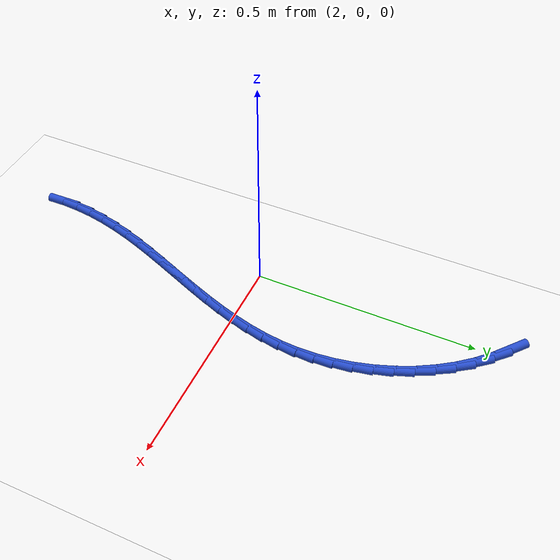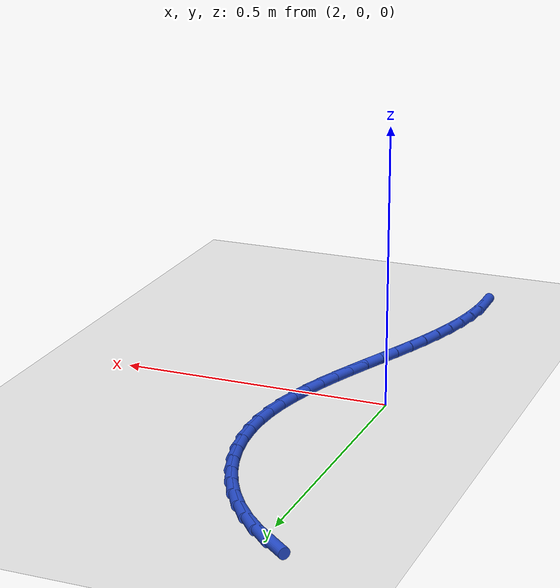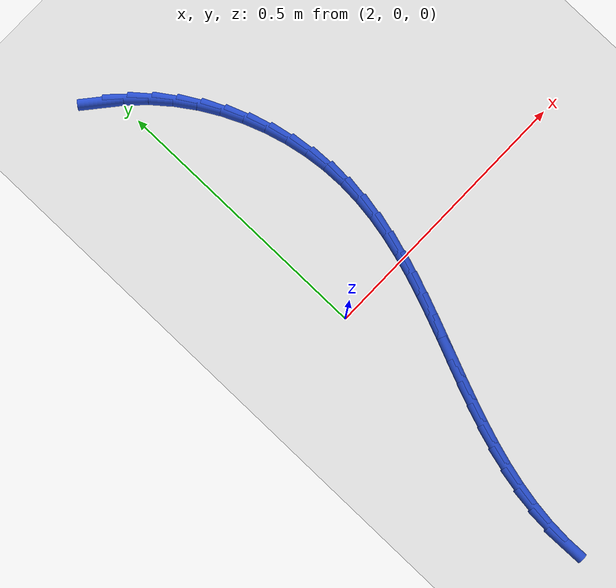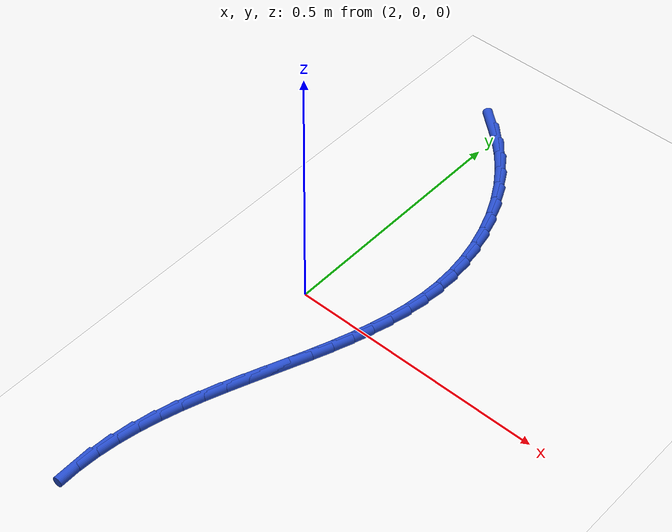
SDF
<sdf version="1.6">
 <world name="default">
  <model name="ground_plane">
   <static>1</static>
   <link name="link">
    <collision name="collision">
     <geometry><plane><normal>0 0 1</normal><size>100 100</size></plane></geometry>
     <surface><friction><ode><mu>100</mu><mu2>50</mu2></ode></friction></surface>
    </collision>
    <visual name="visual">
     <cast_shadows>0</cast_shadows>
     <geometry><plane><normal>0 0 1</normal><size>100 100</size></plane></geometry>
     <material>
      <script><uri>file://media/materials/scripts/gazebo.material</uri><name>Gazebo/WhiteGlow</name></script>
     </material>
    </visual>
   </link>
  </model>
  <model name="line">
   <link name="link_75">
    <pose>1.9780614013407571 0.5671713108625649 0.01 0 1.57 -0.6936888601320007</pose>
    <collision name="collision">
     <geometry><cylinder><radius>0.01</radius><length>0.08</length></cylinder></geometry>
    </collision>
    <visual name="visual">
     <material>
      <script><name>Gazebo/Blue</name><uri>file://media/materials/scripts/gazebo.material</uri></script>
     </material>
     <geometry><cylinder><radius>0.01</radius><length>0.08</length></cylinder></geometry>
    </visual>
   </link>
   <link name="link_76">
    <pose>2.011343939112425 0.5394949932812612 0.01 0 1.57 -0.7892312715022529</pose>
    <collision name="collision">
     <geometry><cylinder><radius>0.01</radius><length>0.08</length></cylinder></geometry>
    </collision>
    <visual name="visual">
     <material>
      <script><name>Gazebo/Blue</name><uri>file://media/materials/scripts/gazebo.material</uri></script>
     </material>
     <geometry><cylinder><radius>0.01</radius><length>0.08</length></cylinder></geometry>
    </visual>
   </link>
   <link name="link_77">
    <pose>2.041561241494025 0.5090451460177544 0.01 0 1.57 -0.8811543210112385</pose>
    <collision name="collision">
     <geometry><cylinder><radius>0.01</radius><length>0.08</length></cylinder></geometry>
    </collision>
    <visual name="visual">
     <material>
      <script><name>Gazebo/Blue</name><uri>file://media/materials/scripts/gazebo.material</uri></script>
     </material>
     <geometry><cylinder><radius>0.01</radius><length>0.08</length></cylinder></geometry>
    </visual>
   </link>
   <link name="link_78">
    <pose>2.068681072211994 0.476162038779966 0.01 0 1.57 -0.9695959242122205</pose>
    <collision name="collision">
     <geometry><cylinder><radius>0.01</radius><length>0.08</length></cylinder></geometry>
    </collision>
    <visual name="visual">
     <material>
      <script><name>Gazebo/Blue</name><uri>file://media/materials/scripts/gazebo.material</uri></script>
     </material>
     <geometry><cylinder><radius>0.01</radius><length>0.08</length></cylinder></geometry>
    </visual>
   </link>
   <link name="link_79">
    <pose>2.0926711949927723 0.441185941275816 0.01 0 1.57 -1.0549344981326458</pose>
    <collision name="collision">
     <geometry><cylinder><radius>0.01</radius><length>0.08</length></cylinder></geometry>
    </collision>
    <visual name="visual">
     <material>
      <script><name>Gazebo/Blue</name><uri>file://media/materials/scripts/gazebo.material</uri></script>
     </material>
     <geometry><cylinder><radius>0.01</radius><length>0.08</length></cylinder></geometry>
    </visual>
   </link>
   <link name="link_80">
    <pose>2.113499373562797 0.40445712321322436 0.01 0 1.57 -1.137733074092599</pose>
    <collision name="collision">
     <geometry><cylinder><radius>0.01</radius><length>0.08</length></cylinder></geometry>
    </collision>
    <visual name="visual">
     <material>
      <script><name>Gazebo/Blue</name><uri>file://media/materials/scripts/gazebo.material</uri></script>
     </material>
     <geometry><cylinder><radius>0.01</radius><length>0.08</length></cylinder></geometry>
    </visual>
   </link>
   <link name="link_81">
    <pose>2.1311333716485055 0.36631585430011204 0.01 0 1.57 -1.218692683642936</pose>
    <collision name="collision">
     <geometry><cylinder><radius>0.01</radius><length>0.08</length></cylinder></geometry>
    </collision>
    <visual name="visual">
     <material>
      <script><name>Gazebo/Blue</name><uri>file://media/materials/scripts/gazebo.material</uri></script>
     </material>
     <geometry><cylinder><radius>0.01</radius><length>0.08</length></cylinder></geometry>
    </visual>
   </link>
   <link name="link_82">
    <pose>2.1455409529763365 0.32710240424439935 0.01 0 1.57 -1.2986182564822601</pose>
    <collision name="collision">
     <geometry><cylinder><radius>0.01</radius><length>0.08</length></cylinder></geometry>
    </collision>
    <visual name="visual">
     <material>
      <script><name>Gazebo/Blue</name><uri>file://media/materials/scripts/gazebo.material</uri></script>
     </material>
     <geometry><cylinder><radius>0.01</radius><length>0.08</length></cylinder></geometry>
    </visual>
   </link>
   <link name="link_83">
    <pose>2.1566898812727264 0.28715704275400605 0.01 0 1.57 -1.3783963968486297</pose>
    <collision name="collision">
     <geometry><cylinder><radius>0.01</radius><length>0.08</length></cylinder></geometry>
    </collision>
    <visual name="visual">
     <material>
      <script><name>Gazebo/Blue</name><uri>file://media/materials/scripts/gazebo.material</uri></script>
     </material>
     <geometry><cylinder><radius>0.01</radius><length>0.08</length></cylinder></geometry>
    </visual>
   </link>
   <link name="link_84">
    <pose>2.1645479202641145 0.2468200395368534 0.01 0 1.57 -1.4589820125764221</pose>
    <collision name="collision">
     <geometry><cylinder><radius>0.01</radius><length>0.08</length></cylinder></geometry>
    </collision>
    <visual name="visual">
     <material>
      <script><name>Gazebo/Blue</name><uri>file://media/materials/scripts/gazebo.material</uri></script>
     </material>
     <geometry><cylinder><radius>0.01</radius><length>0.08</length></cylinder></geometry>
    </visual>
   </link>
   <link name="link_85">
    <pose>2.1690828336769385 0.20643166430086088 0.01 0 1.57 -1.5413742203764105</pose>
    <collision name="collision">
     <geometry><cylinder><radius>0.01</radius><length>0.08</length></cylinder></geometry>
    </collision>
    <visual name="visual">
     <material>
      <script><name>Gazebo/Blue</name><uri>file://media/materials/scripts/gazebo.material</uri></script>
     </material>
     <geometry><cylinder><radius>0.01</radius><length>0.08</length></cylinder></geometry>
    </visual>
   </link>
   <link name="link_86">
    <pose>2.1702630043756845 0.16633153958562433 0.01 0 1.57 1.5180313942333072</pose>
    <collision name="collision">
     <geometry><cylinder><radius>0.01</radius><length>0.08</length></cylinder></geometry>
    </collision>
    <visual name="visual">
     <material>
      <script><name>Gazebo/Blue</name><uri>file://media/materials/scripts/gazebo.material</uri></script>
     </material>
     <geometry><cylinder><radius>0.01</radius><length>0.08</length></cylinder></geometry>
    </visual>
   </link>
   <link name="link_87">
    <pose>2.168171961959467 0.1267389281505984 0.01 0 1.57 1.4429576533127935</pose>
    <collision name="collision">
     <geometry><cylinder><radius>0.01</radius><length>0.08</length></cylinder></geometry>
    </collision>
    <visual name="visual">
     <material>
      <script><name>Gazebo/Blue</name><uri>file://media/materials/scripts/gazebo.material</uri></script>
     </material>
     <geometry><cylinder><radius>0.01</radius><length>0.08</length></cylinder></geometry>
    </visual>
   </link>
   <link name="link_88">
    <pose>2.1631426494627157 0.08761238760943799 0.01 0 1.57 1.3770070553616547</pose>
    <collision name="collision">
     <geometry><cylinder><radius>0.01</radius><length>0.08</length></cylinder></geometry>
    </collision>
    <visual name="visual">
     <material>
      <script><name>Gazebo/Blue</name><uri>file://media/materials/scripts/gazebo.material</uri></script>
     </material>
     <geometry><cylinder><radius>0.01</radius><length>0.08</length></cylinder></geometry>
    </visual>
   </link>
   <link name="link_89">
    <pose>2.1555406254746177 0.04887638341494148 0.01 0 1.57 1.3208284747273251</pose>
    <collision name="collision">
     <geometry><cylinder><radius>0.01</radius><length>0.08</length></cylinder></geometry>
    </collision>
    <visual name="visual">
     <material>
      <script><name>Gazebo/Blue</name><uri>file://media/materials/scripts/gazebo.material</uri></script>
     </material>
     <geometry><cylinder><radius>0.01</radius><length>0.08</length></cylinder></geometry>
    </visual>
   </link>
   <link name="link_90">
    <pose>2.1457314485843564 0.010455381019906073 0.01 0 1.57 1.2746292530645242</pose>
    <collision name="collision">
     <geometry><cylinder><radius>0.01</radius><length>0.08</length></cylinder></geometry>
    </collision>
    <visual name="visual">
     <material>
      <script><name>Gazebo/Blue</name><uri>file://media/materials/scripts/gazebo.material</uri></script>
     </material>
     <geometry><cylinder><radius>0.01</radius><length>0.08</length></cylinder></geometry>
    </visual>
   </link>
   <link name="link_91">
    <pose>2.1340806773811165 -0.027726154122870675 0.01 0 1.57 1.2383304844749423</pose>
    <collision name="collision">
     <geometry><cylinder><radius>0.01</radius><length>0.08</length></cylinder></geometry>
    </collision>
    <visual name="visual">
     <material>
      <script><name>Gazebo/Blue</name><uri>file://media/materials/scripts/gazebo.material</uri></script>
     </material>
     <geometry><cylinder><radius>0.01</radius><length>0.08</length></cylinder></geometry>
    </visual>
   </link>
   <link name="link_92">
    <pose>2.120953870454084 -0.06574375656059198 0.01 0 1.57 1.211705965371024</pose>
    <collision name="collision">
     <geometry><cylinder><radius>0.01</radius><length>0.08</length></cylinder></geometry>
    </collision>
    <visual name="visual">
     <material>
      <script><name>Gazebo/Blue</name><uri>file://media/materials/scripts/gazebo.material</uri></script>
     </material>
     <geometry><cylinder><radius>0.01</radius><length>0.08</length></cylinder></geometry>
    </visual>
   </link>
   <link name="link_93">
    <pose>2.106716586392442 -0.10367296084045868 0.01 0 1.57 1.1944879876017243</pose>
    <collision name="collision">
     <geometry><cylinder><radius>0.01</radius><length>0.08</length></cylinder></geometry>
    </collision>
    <visual name="visual">
     <material>
      <script><name>Gazebo/Blue</name><uri>file://media/materials/scripts/gazebo.material</uri></script>
     </material>
     <geometry><cylinder><radius>0.01</radius><length>0.08</length></cylinder></geometry>
    </visual>
   </link>
   <link name="link_94">
    <pose>2.091734383785376 -0.14158930150967414 0.01 0 1.57 1.1864381121315333</pose>
    <collision name="collision">
     <geometry><cylinder><radius>0.01</radius><length>0.08</length></cylinder></geometry>
    </collision>
    <visual name="visual">
     <material>
      <script><name>Gazebo/Blue</name><uri>file://media/materials/scripts/gazebo.material</uri></script>
     </material>
     <geometry><cylinder><radius>0.01</radius><length>0.08</length></cylinder></geometry>
    </visual>
   </link>
   <link name="link_95">
    <pose>2.076372821222071 -0.1795683131154407 0.01 0 1.57 1.1873876594602482</pose>
    <collision name="collision">
     <geometry><cylinder><radius>0.01</radius><length>0.08</length></cylinder></geometry>
    </collision>
    <visual name="visual">
     <material>
      <script><name>Gazebo/Blue</name><uri>file://media/materials/scripts/gazebo.material</uri></script>
     </material>
     <geometry><cylinder><radius>0.01</radius><length>0.08</length></cylinder></geometry>
    </visual>
   </link>
   <link name="link_96">
    <pose>2.0609974572917102 -0.2176855302049607 0.01 0 1.57 1.197253602473335</pose>
    <collision name="collision">
     <geometry><cylinder><radius>0.01</radius><length>0.08</length></cylinder></geometry>
    </collision>
    <visual name="visual">
     <material>
      <script><name>Gazebo/Blue</name><uri>file://media/materials/scripts/gazebo.material</uri></script>
     </material>
     <geometry><cylinder><radius>0.01</radius><length>0.08</length></cylinder></geometry>
    </visual>
   </link>
   <link name="link_97">
    <pose>2.0459738505834797 -0.25601648732543675 0.01 0 1.57 1.2160337202314928</pose>
    <collision name="collision">
     <geometry><cylinder><radius>0.01</radius><length>0.08</length></cylinder></geometry>
    </collision>
    <visual name="visual">
     <material>
      <script><name>Gazebo/Blue</name><uri>file://media/materials/scripts/gazebo.material</uri></script>
     </material>
     <geometry><cylinder><radius>0.01</radius><length>0.08</length></cylinder></geometry>
    </visual>
   </link>
   <link name="link_98">
    <pose>2.0316675596865643 -0.29463671902407196 0.01 0 1.57 1.2437822140363244</pose>
    <collision name="collision">
     <geometry><cylinder><radius>0.01</radius><length>0.08</length></cylinder></geometry>
    </collision>
    <visual name="visual">
     <material>
      <script><name>Gazebo/Blue</name><uri>file://media/materials/scripts/gazebo.material</uri></script>
     </material>
     <geometry><cylinder><radius>0.01</radius><length>0.08</length></cylinder></geometry>
    </visual>
   </link>
   <link name="link_99">
    <pose>2.0184441431901474 -0.3336217598480673 0.01 0 1.57 1.2805647281705805</pose>
    <collision name="collision">
     <geometry><cylinder><radius>0.01</radius><length>0.08</length></cylinder></geometry>
    </collision>
    <visual name="visual">
     <material>
      <script><name>Gazebo/Blue</name><uri>file://media/materials/scripts/gazebo.material</uri></script>
     </material>
     <geometry><cylinder><radius>0.01</radius><length>0.08</length></cylinder></geometry>
    </visual>
   </link>
   <link name="link_100">
    <pose>2.0066691596834154 -0.3730471443446259 0.01 0 1.57 1.3263909109588448</pose>
    <collision name="collision">
     <geometry><cylinder><radius>0.01</radius><length>0.08</length></cylinder></geometry>
    </collision>
    <visual name="visual">
     <material>
      <script><name>Gazebo/Blue</name><uri>file://media/materials/scripts/gazebo.material</uri></script>
     </material>
     <geometry><cylinder><radius>0.01</radius><length>0.08</length></cylinder></geometry>
    </visual>
   </link>
   <link name="link_101">
    <pose>1.9967081677555516 -0.4129884070609501 0.01 0 1.57 1.3811245701106807</pose>
    <collision name="collision">
     <geometry><cylinder><radius>0.01</radius><length>0.08</length></cylinder></geometry>
    </collision>
    <visual name="visual">
     <material>
      <script><name>Gazebo/Blue</name><uri>file://media/materials/scripts/gazebo.material</uri></script>
     </material>
     <geometry><cylinder><radius>0.01</radius><length>0.08</length></cylinder></geometry>
    </visual>
   </link>
   <link name="link_102">
    <pose>1.9889267259957415 -0.4535210825442426 0.01 0 1.57 1.4443774986622042</pose>
    <collision name="collision">
     <geometry><cylinder><radius>0.01</radius><length>0.08</length></cylinder></geometry>
    </collision>
    <visual name="visual">
     <material>
      <script><name>Gazebo/Blue</name><uri>file://media/materials/scripts/gazebo.material</uri></script>
     </material>
     <geometry><cylinder><radius>0.01</radius><length>0.08</length></cylinder></geometry>
    </visual>
   </link>
   <link name="link_103">
    <pose>1.9836903929931688 -0.49472070534170653 0.01 0 1.57 1.5154036245181026</pose>
    <collision name="collision">
     <geometry><cylinder><radius>0.01</radius><length>0.08</length></cylinder></geometry>
    </collision>
    <visual name="visual">
     <material>
      <script><name>Gazebo/Blue</name><uri>file://media/materials/scripts/gazebo.material</uri></script>
     </material>
     <geometry><cylinder><radius>0.01</radius><length>0.08</length></cylinder></geometry>
    </visual>
   </link>
   <link name="link_104">
    <pose>1.9813647273370198 -0.5366628100005427 0.01 0 1.57 -1.5485699223589675</pose>
    <collision name="collision">
     <geometry><cylinder><radius>0.01</radius><length>0.08</length></cylinder></geometry>
    </collision>
    <visual name="visual">
     <material>
      <script><name>Gazebo/Blue</name><uri>file://media/materials/scripts/gazebo.material</uri></script>
     </material>
     <geometry><cylinder><radius>0.01</radius><length>0.08</length></cylinder></geometry>
    </visual>
   </link>
  </model>
 </world>
</sdf>
